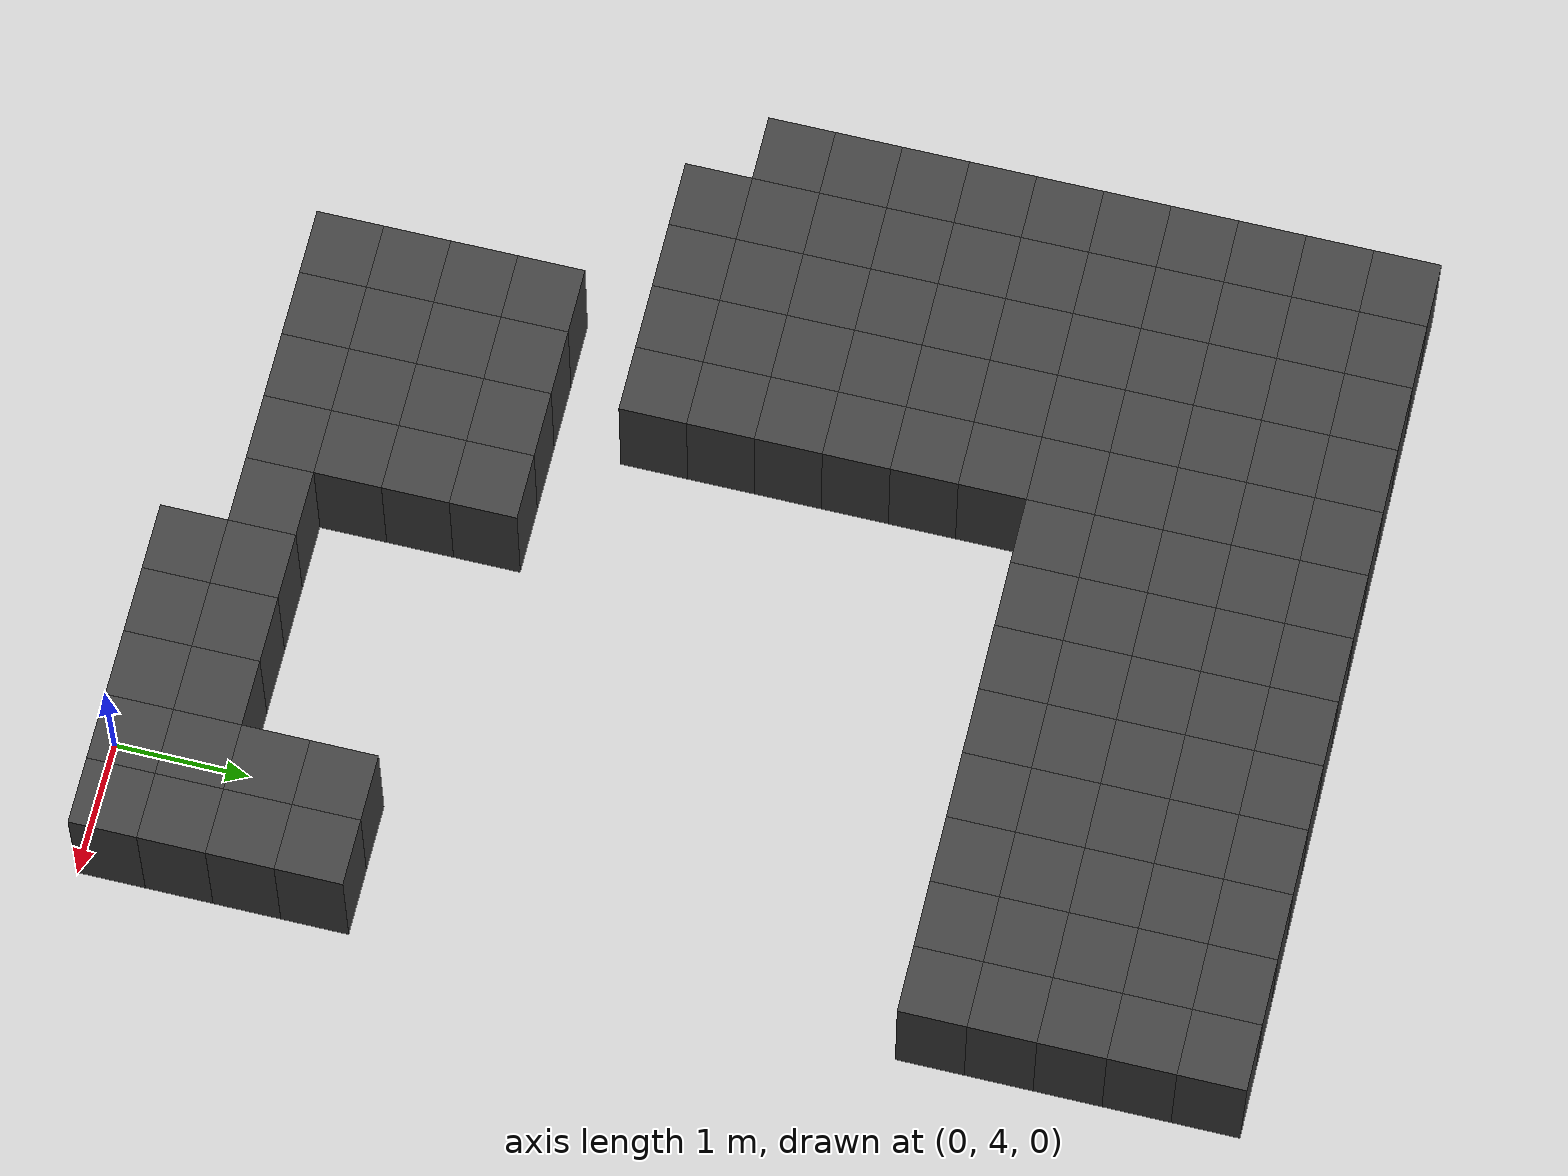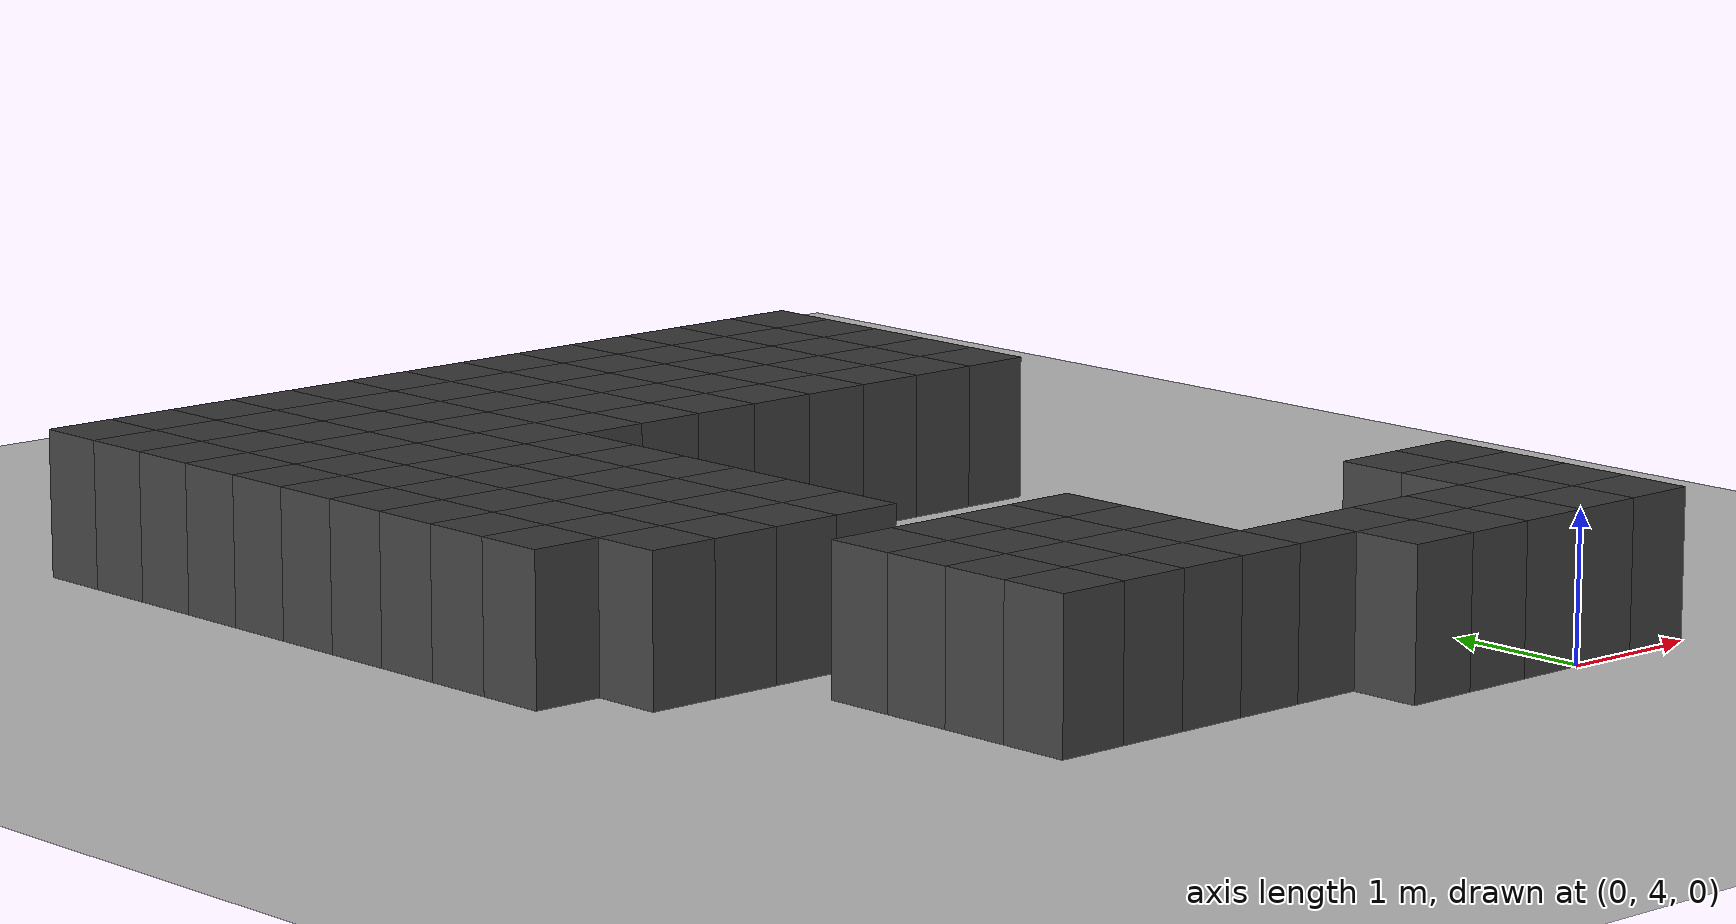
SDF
<sdf version="1.7">
 <world name="map_14668">
  <model name="ground_plane">
   <static>true</static>
   <link name="link">
    <collision name="collision">
     <geometry><plane><normal>0 0 1</normal><size>200 200</size></plane></geometry>
    </collision>
    <visual name="visual">
     <geometry><plane><normal>0 0 1</normal><size>200 200</size></plane></geometry>
     <material><ambient>0.8 0.8 0.8 1</ambient><diffuse>0.8 0.8 0.8 1</diffuse></material>
    </visual>
   </link>
  </model>
  <model name="maze_environment">
   <static>true</static>
   <link name="wall_14">
    <pose>-5.250 12.250 0.500 0 0 0</pose>
    <collision name="col"><geometry><box><size>0.5 0.5 1.0</size></box></geometry></collision>
    <visual name="vis">
     <geometry><box><size>0.5 0.5 1.0</size></box></geometry>
     <material><ambient>0.15 0.15 0.15 1</ambient><diffuse>0.25 0.25 0.25 1</diffuse></material>
    </visual>
   </link>
   <link name="wall_15">
    <pose>-4.750 12.250 0.500 0 0 0</pose>
    <collision name="col"><geometry><box><size>0.5 0.5 1.0</size></box></geometry></collision>
    <visual name="vis">
     <geometry><box><size>0.5 0.5 1.0</size></box></geometry>
     <material><ambient>0.15 0.15 0.15 1</ambient><diffuse>0.25 0.25 0.25 1</diffuse></material>
    </visual>
   </link>
   <link name="wall_16">
    <pose>-4.250 12.250 0.500 0 0 0</pose>
    <collision name="col"><geometry><box><size>0.5 0.5 1.0</size></box></geometry></collision>
    <visual name="vis">
     <geometry><box><size>0.5 0.5 1.0</size></box></geometry>
     <material><ambient>0.15 0.15 0.15 1</ambient><diffuse>0.25 0.25 0.25 1</diffuse></material>
    </visual>
   </link>
   <link name="wall_17">
    <pose>-3.750 12.250 0.500 0 0 0</pose>
    <collision name="col"><geometry><box><size>0.5 0.5 1.0</size></box></geometry></collision>
    <visual name="vis">
     <geometry><box><size>0.5 0.5 1.0</size></box></geometry>
     <material><ambient>0.15 0.15 0.15 1</ambient><diffuse>0.25 0.25 0.25 1</diffuse></material>
    </visual>
   </link>
   <link name="wall_18">
    <pose>-3.250 12.250 0.500 0 0 0</pose>
    <collision name="col"><geometry><box><size>0.5 0.5 1.0</size></box></geometry></collision>
    <visual name="vis">
     <geometry><box><size>0.5 0.5 1.0</size></box></geometry>
     <material><ambient>0.15 0.15 0.15 1</ambient><diffuse>0.25 0.25 0.25 1</diffuse></material>
    </visual>
   </link>
   <link name="wall_19">
    <pose>-2.750 12.250 0.500 0 0 0</pose>
    <collision name="col"><geometry><box><size>0.5 0.5 1.0</size></box></geometry></collision>
    <visual name="vis">
     <geometry><box><size>0.5 0.5 1.0</size></box></geometry>
     <material><ambient>0.15 0.15 0.15 1</ambient><diffuse>0.25 0.25 0.25 1</diffuse></material>
    </visual>
   </link>
   <link name="wall_20">
    <pose>-2.250 12.250 0.500 0 0 0</pose>
    <collision name="col"><geometry><box><size>0.5 0.5 1.0</size></box></geometry></collision>
    <visual name="vis">
     <geometry><box><size>0.5 0.5 1.0</size></box></geometry>
     <material><ambient>0.15 0.15 0.15 1</ambient><diffuse>0.25 0.25 0.25 1</diffuse></material>
    </visual>
   </link>
   <link name="wall_21">
    <pose>-1.750 12.250 0.500 0 0 0</pose>
    <collision name="col"><geometry><box><size>0.5 0.5 1.0</size></box></geometry></collision>
    <visual name="vis">
     <geometry><box><size>0.5 0.5 1.0</size></box></geometry>
     <material><ambient>0.15 0.15 0.15 1</ambient><diffuse>0.25 0.25 0.25 1</diffuse></material>
    </visual>
   </link>
   <link name="wall_22">
    <pose>-1.250 12.250 0.500 0 0 0</pose>
    <collision name="col"><geometry><box><size>0.5 0.5 1.0</size></box></geometry></collision>
    <visual name="vis">
     <geometry><box><size>0.5 0.5 1.0</size></box></geometry>
     <material><ambient>0.15 0.15 0.15 1</ambient><diffuse>0.25 0.25 0.25 1</diffuse></material>
    </visual>
   </link>
   <link name="wall_23">
    <pose>-0.750 12.250 0.500 0 0 0</pose>
    <collision name="col"><geometry><box><size>0.5 0.5 1.0</size></box></geometry></collision>
    <visual name="vis">
     <geometry><box><size>0.5 0.5 1.0</size></box></geometry>
     <material><ambient>0.15 0.15 0.15 1</ambient><diffuse>0.25 0.25 0.25 1</diffuse></material>
    </visual>
   </link>
   <link name="wall_24">
    <pose>-0.250 12.250 0.500 0 0 0</pose>
    <collision name="col"><geometry><box><size>0.5 0.5 1.0</size></box></geometry></collision>
    <visual name="vis">
     <geometry><box><size>0.5 0.5 1.0</size></box></geometry>
     <material><ambient>0.15 0.15 0.15 1</ambient><diffuse>0.25 0.25 0.25 1</diffuse></material>
    </visual>
   </link>
   <link name="wall_25">
    <pose>0.250 12.250 0.500 0 0 0</pose>
    <collision name="col"><geometry><box><size>0.5 0.5 1.0</size></box></geometry></collision>
    <visual name="vis">
     <geometry><box><size>0.5 0.5 1.0</size></box></geometry>
     <material><ambient>0.15 0.15 0.15 1</ambient><diffuse>0.25 0.25 0.25 1</diffuse></material>
    </visual>
   </link>
   <link name="wall_26">
    <pose>0.750 12.250 0.500 0 0 0</pose>
    <collision name="col"><geometry><box><size>0.5 0.5 1.0</size></box></geometry></collision>
    <visual name="vis">
     <geometry><box><size>0.5 0.5 1.0</size></box></geometry>
     <material><ambient>0.15 0.15 0.15 1</ambient><diffuse>0.25 0.25 0.25 1</diffuse></material>
    </visual>
   </link>
   <link name="wall_61">
    <pose>-5.250 11.750 0.500 0 0 0</pose>
    <collision name="col"><geometry><box><size>0.5 0.5 1.0</size></box></geometry></collision>
    <visual name="vis">
     <geometry><box><size>0.5 0.5 1.0</size></box></geometry>
     <material><ambient>0.15 0.15 0.15 1</ambient><diffuse>0.25 0.25 0.25 1</diffuse></material>
    </visual>
   </link>
   <link name="wall_62">
    <pose>-4.750 11.750 0.500 0 0 0</pose>
    <collision name="col"><geometry><box><size>0.5 0.5 1.0</size></box></geometry></collision>
    <visual name="vis">
     <geometry><box><size>0.5 0.5 1.0</size></box></geometry>
     <material><ambient>0.15 0.15 0.15 1</ambient><diffuse>0.25 0.25 0.25 1</diffuse></material>
    </visual>
   </link>
   <link name="wall_63">
    <pose>-4.250 11.750 0.500 0 0 0</pose>
    <collision name="col"><geometry><box><size>0.5 0.5 1.0</size></box></geometry></collision>
    <visual name="vis">
     <geometry><box><size>0.5 0.5 1.0</size></box></geometry>
     <material><ambient>0.15 0.15 0.15 1</ambient><diffuse>0.25 0.25 0.25 1</diffuse></material>
    </visual>
   </link>
   <link name="wall_64">
    <pose>-3.750 11.750 0.500 0 0 0</pose>
    <collision name="col"><geometry><box><size>0.5 0.5 1.0</size></box></geometry></collision>
    <visual name="vis">
     <geometry><box><size>0.5 0.5 1.0</size></box></geometry>
     <material><ambient>0.15 0.15 0.15 1</ambient><diffuse>0.25 0.25 0.25 1</diffuse></material>
    </visual>
   </link>
   <link name="wall_65">
    <pose>-3.250 11.750 0.500 0 0 0</pose>
    <collision name="col"><geometry><box><size>0.5 0.5 1.0</size></box></geometry></collision>
    <visual name="vis">
     <geometry><box><size>0.5 0.5 1.0</size></box></geometry>
     <material><ambient>0.15 0.15 0.15 1</ambient><diffuse>0.25 0.25 0.25 1</diffuse></material>
    </visual>
   </link>
   <link name="wall_66">
    <pose>-2.750 11.750 0.500 0 0 0</pose>
    <collision name="col"><geometry><box><size>0.5 0.5 1.0</size></box></geometry></collision>
    <visual name="vis">
     <geometry><box><size>0.5 0.5 1.0</size></box></geometry>
     <material><ambient>0.15 0.15 0.15 1</ambient><diffuse>0.25 0.25 0.25 1</diffuse></material>
    </visual>
   </link>
   <link name="wall_67">
    <pose>-2.250 11.750 0.500 0 0 0</pose>
    <collision name="col"><geometry><box><size>0.5 0.5 1.0</size></box></geometry></collision>
    <visual name="vis">
     <geometry><box><size>0.5 0.5 1.0</size></box></geometry>
     <material><ambient>0.15 0.15 0.15 1</ambient><diffuse>0.25 0.25 0.25 1</diffuse></material>
    </visual>
   </link>
   <link name="wall_68">
    <pose>-1.750 11.750 0.500 0 0 0</pose>
    <collision name="col"><geometry><box><size>0.5 0.5 1.0</size></box></geometry></collision>
    <visual name="vis">
     <geometry><box><size>0.5 0.5 1.0</size></box></geometry>
     <material><ambient>0.15 0.15 0.15 1</ambient><diffuse>0.25 0.25 0.25 1</diffuse></material>
    </visual>
   </link>
   <link name="wall_69">
    <pose>-1.250 11.750 0.500 0 0 0</pose>
    <collision name="col"><geometry><box><size>0.5 0.5 1.0</size></box></geometry></collision>
    <visual name="vis">
     <geometry><box><size>0.5 0.5 1.0</size></box></geometry>
     <material><ambient>0.15 0.15 0.15 1</ambient><diffuse>0.25 0.25 0.25 1</diffuse></material>
    </visual>
   </link>
   <link name="wall_70">
    <pose>-0.750 11.750 0.500 0 0 0</pose>
    <collision name="col"><geometry><box><size>0.5 0.5 1.0</size></box></geometry></collision>
    <visual name="vis">
     <geometry><box><size>0.5 0.5 1.0</size></box></geometry>
     <material><ambient>0.15 0.15 0.15 1</ambient><diffuse>0.25 0.25 0.25 1</diffuse></material>
    </visual>
   </link>
   <link name="wall_71">
    <pose>-0.250 11.750 0.500 0 0 0</pose>
    <collision name="col"><geometry><box><size>0.5 0.5 1.0</size></box></geometry></collision>
    <visual name="vis">
     <geometry><box><size>0.5 0.5 1.0</size></box></geometry>
     <material><ambient>0.15 0.15 0.15 1</ambient><diffuse>0.25 0.25 0.25 1</diffuse></material>
    </visual>
   </link>
   <link name="wall_72">
    <pose>0.250 11.750 0.500 0 0 0</pose>
    <collision name="col"><geometry><box><size>0.5 0.5 1.0</size></box></geometry></collision>
    <visual name="vis">
     <geometry><box><size>0.5 0.5 1.0</size></box></geometry>
     <material><ambient>0.15 0.15 0.15 1</ambient><diffuse>0.25 0.25 0.25 1</diffuse></material>
    </visual>
   </link>
   <link name="wall_73">
    <pose>0.750 11.750 0.500 0 0 0</pose>
    <collision name="col"><geometry><box><size>0.5 0.5 1.0</size></box></geometry></collision>
    <visual name="vis">
     <geometry><box><size>0.5 0.5 1.0</size></box></geometry>
     <material><ambient>0.15 0.15 0.15 1</ambient><diffuse>0.25 0.25 0.25 1</diffuse></material>
    </visual>
   </link>
   <link name="wall_108">
    <pose>-5.250 11.250 0.500 0 0 0</pose>
    <collision name="col"><geometry><box><size>0.5 0.5 1.0</size></box></geometry></collision>
    <visual name="vis">
     <geometry><box><size>0.5 0.5 1.0</size></box></geometry>
     <material><ambient>0.15 0.15 0.15 1</ambient><diffuse>0.25 0.25 0.25 1</diffuse></material>
    </visual>
   </link>
   <link name="wall_109">
    <pose>-4.750 11.250 0.500 0 0 0</pose>
    <collision name="col"><geometry><box><size>0.5 0.5 1.0</size></box></geometry></collision>
    <visual name="vis">
     <geometry><box><size>0.5 0.5 1.0</size></box></geometry>
     <material><ambient>0.15 0.15 0.15 1</ambient><diffuse>0.25 0.25 0.25 1</diffuse></material>
    </visual>
   </link>
   <link name="wall_110">
    <pose>-4.250 11.250 0.500 0 0 0</pose>
    <collision name="col"><geometry><box><size>0.5 0.5 1.0</size></box></geometry></collision>
    <visual name="vis">
     <geometry><box><size>0.5 0.5 1.0</size></box></geometry>
     <material><ambient>0.15 0.15 0.15 1</ambient><diffuse>0.25 0.25 0.25 1</diffuse></material>
    </visual>
   </link>
   <link name="wall_111">
    <pose>-3.750 11.250 0.500 0 0 0</pose>
    <collision name="col"><geometry><box><size>0.5 0.5 1.0</size></box></geometry></collision>
    <visual name="vis">
     <geometry><box><size>0.5 0.5 1.0</size></box></geometry>
     <material><ambient>0.15 0.15 0.15 1</ambient><diffuse>0.25 0.25 0.25 1</diffuse></material>
    </visual>
   </link>
   <link name="wall_112">
    <pose>-3.250 11.250 0.500 0 0 0</pose>
    <collision name="col"><geometry><box><size>0.5 0.5 1.0</size></box></geometry></collision>
    <visual name="vis">
     <geometry><box><size>0.5 0.5 1.0</size></box></geometry>
     <material><ambient>0.15 0.15 0.15 1</ambient><diffuse>0.25 0.25 0.25 1</diffuse></material>
    </visual>
   </link>
   <link name="wall_113">
    <pose>-2.750 11.250 0.500 0 0 0</pose>
    <collision name="col"><geometry><box><size>0.5 0.5 1.0</size></box></geometry></collision>
    <visual name="vis">
     <geometry><box><size>0.5 0.5 1.0</size></box></geometry>
     <material><ambient>0.15 0.15 0.15 1</ambient><diffuse>0.25 0.25 0.25 1</diffuse></material>
    </visual>
   </link>
   <link name="wall_114">
    <pose>-2.250 11.250 0.500 0 0 0</pose>
    <collision name="col"><geometry><box><size>0.5 0.5 1.0</size></box></geometry></collision>
    <visual name="vis">
     <geometry><box><size>0.5 0.5 1.0</size></box></geometry>
     <material><ambient>0.15 0.15 0.15 1</ambient><diffuse>0.25 0.25 0.25 1</diffuse></material>
    </visual>
   </link>
   <link name="wall_115">
    <pose>-1.750 11.250 0.500 0 0 0</pose>
    <collision name="col"><geometry><box><size>0.5 0.5 1.0</size></box></geometry></collision>
    <visual name="vis">
     <geometry><box><size>0.5 0.5 1.0</size></box></geometry>
     <material><ambient>0.15 0.15 0.15 1</ambient><diffuse>0.25 0.25 0.25 1</diffuse></material>
    </visual>
   </link>
   <link name="wall_116">
    <pose>-1.250 11.250 0.500 0 0 0</pose>
    <collision name="col"><geometry><box><size>0.5 0.5 1.0</size></box></geometry></collision>
    <visual name="vis">
     <geometry><box><size>0.5 0.5 1.0</size></box></geometry>
     <material><ambient>0.15 0.15 0.15 1</ambient><diffuse>0.25 0.25 0.25 1</diffuse></material>
    </visual>
   </link>
   <link name="wall_117">
    <pose>-0.750 11.250 0.500 0 0 0</pose>
    <collision name="col"><geometry><box><size>0.5 0.5 1.0</size></box></geometry></collision>
    <visual name="vis">
     <geometry><box><size>0.5 0.5 1.0</size></box></geometry>
     <material><ambient>0.15 0.15 0.15 1</ambient><diffuse>0.25 0.25 0.25 1</diffuse></material>
    </visual>
   </link>
   <link name="wall_118">
    <pose>-0.250 11.250 0.500 0 0 0</pose>
    <collision name="col"><geometry><box><size>0.5 0.5 1.0</size></box></geometry></collision>
    <visual name="vis">
     <geometry><box><size>0.5 0.5 1.0</size></box></geometry>
     <material><ambient>0.15 0.15 0.15 1</ambient><diffuse>0.25 0.25 0.25 1</diffuse></material>
    </visual>
   </link>
   <link name="wall_119">
    <pose>0.250 11.250 0.500 0 0 0</pose>
    <collision name="col"><geometry><box><size>0.5 0.5 1.0</size></box></geometry></collision>
    <visual name="vis">
     <geometry><box><size>0.5 0.5 1.0</size></box></geometry>
     <material><ambient>0.15 0.15 0.15 1</ambient><diffuse>0.25 0.25 0.25 1</diffuse></material>
    </visual>
   </link>
   <link name="wall_120">
    <pose>0.750 11.250 0.500 0 0 0</pose>
    <collision name="col"><geometry><box><size>0.5 0.5 1.0</size></box></geometry></collision>
    <visual name="vis">
     <geometry><box><size>0.5 0.5 1.0</size></box></geometry>
     <material><ambient>0.15 0.15 0.15 1</ambient><diffuse>0.25 0.25 0.25 1</diffuse></material>
    </visual>
   </link>
   <link name="wall_147">
    <pose>-5.250 10.750 0.500 0 0 0</pose>
    <collision name="col"><geometry><box><size>0.5 0.5 1.0</size></box></geometry></collision>
    <visual name="vis">
     <geometry><box><size>0.5 0.5 1.0</size></box></geometry>
     <material><ambient>0.15 0.15 0.15 1</ambient><diffuse>0.25 0.25 0.25 1</diffuse></material>
    </visual>
   </link>
   <link name="wall_148">
    <pose>-4.750 10.750 0.500 0 0 0</pose>
    <collision name="col"><geometry><box><size>0.5 0.5 1.0</size></box></geometry></collision>
    <visual name="vis">
     <geometry><box><size>0.5 0.5 1.0</size></box></geometry>
     <material><ambient>0.15 0.15 0.15 1</ambient><diffuse>0.25 0.25 0.25 1</diffuse></material>
    </visual>
   </link>
   <link name="wall_149">
    <pose>-4.250 10.750 0.500 0 0 0</pose>
    <collision name="col"><geometry><box><size>0.5 0.5 1.0</size></box></geometry></collision>
    <visual name="vis">
     <geometry><box><size>0.5 0.5 1.0</size></box></geometry>
     <material><ambient>0.15 0.15 0.15 1</ambient><diffuse>0.25 0.25 0.25 1</diffuse></material>
    </visual>
   </link>
   <link name="wall_150">
    <pose>-3.750 10.750 0.500 0 0 0</pose>
    <collision name="col"><geometry><box><size>0.5 0.5 1.0</size></box></geometry></collision>
    <visual name="vis">
     <geometry><box><size>0.5 0.5 1.0</size></box></geometry>
     <material><ambient>0.15 0.15 0.15 1</ambient><diffuse>0.25 0.25 0.25 1</diffuse></material>
    </visual>
   </link>
   <link name="wall_151">
    <pose>-3.250 10.750 0.500 0 0 0</pose>
    <collision name="col"><geometry><box><size>0.5 0.5 1.0</size></box></geometry></collision>
    <visual name="vis">
     <geometry><box><size>0.5 0.5 1.0</size></box></geometry>
     <material><ambient>0.15 0.15 0.15 1</ambient><diffuse>0.25 0.25 0.25 1</diffuse></material>
    </visual>
   </link>
   <link name="wall_152">
    <pose>-2.750 10.750 0.500 0 0 0</pose>
    <collision name="col"><geometry><box><size>0.5 0.5 1.0</size></box></geometry></collision>
    <visual name="vis">
     <geometry><box><size>0.5 0.5 1.0</size></box></geometry>
     <material><ambient>0.15 0.15 0.15 1</ambient><diffuse>0.25 0.25 0.25 1</diffuse></material>
    </visual>
   </link>
   <link name="wall_153">
    <pose>-2.250 10.750 0.500 0 0 0</pose>
    <collision name="col"><geometry><box><size>0.5 0.5 1.0</size></box></geometry></collision>
    <visual name="vis">
     <geometry><box><size>0.5 0.5 1.0</size></box></geometry>
     <material><ambient>0.15 0.15 0.15 1</ambient><diffuse>0.25 0.25 0.25 1</diffuse></material>
    </visual>
   </link>
   <link name="wall_154">
    <pose>-1.750 10.750 0.500 0 0 0</pose>
    <collision name="col"><geometry><box><size>0.5 0.5 1.0</size></box></geometry></collision>
    <visual name="vis">
     <geometry><box><size>0.5 0.5 1.0</size></box></geometry>
     <material><ambient>0.15 0.15 0.15 1</ambient><diffuse>0.25 0.25 0.25 1</diffuse></material>
    </visual>
   </link>
   <link name="wall_155">
    <pose>-1.250 10.750 0.500 0 0 0</pose>
    <collision name="col"><geometry><box><size>0.5 0.5 1.0</size></box></geometry></collision>
    <visual name="vis">
     <geometry><box><size>0.5 0.5 1.0</size></box></geometry>
     <material><ambient>0.15 0.15 0.15 1</ambient><diffuse>0.25 0.25 0.25 1</diffuse></material>
    </visual>
   </link>
   <link name="wall_156">
    <pose>-0.750 10.750 0.500 0 0 0</pose>
    <collision name="col"><geometry><box><size>0.5 0.5 1.0</size></box></geometry></collision>
    <visual name="vis">
     <geometry><box><size>0.5 0.5 1.0</size></box></geometry>
     <material><ambient>0.15 0.15 0.15 1</ambient><diffuse>0.25 0.25 0.25 1</diffuse></material>
    </visual>
   </link>
   <link name="wall_157">
    <pose>-0.250 10.750 0.500 0 0 0</pose>
    <collision name="col"><geometry><box><size>0.5 0.5 1.0</size></box></geometry></collision>
    <visual name="vis">
     <geometry><box><size>0.5 0.5 1.0</size></box></geometry>
     <material><ambient>0.15 0.15 0.15 1</ambient><diffuse>0.25 0.25 0.25 1</diffuse></material>
    </visual>
   </link>
   <link name="wall_158">
    <pose>0.250 10.750 0.500 0 0 0</pose>
    <collision name="col"><geometry><box><size>0.5 0.5 1.0</size></box></geometry></collision>
    <visual name="vis">
     <geometry><box><size>0.5 0.5 1.0</size></box></geometry>
     <material><ambient>0.15 0.15 0.15 1</ambient><diffuse>0.25 0.25 0.25 1</diffuse></material>
    </visual>
   </link>
   <link name="wall_159">
    <pose>0.750 10.750 0.500 0 0 0</pose>
    <collision name="col"><geometry><box><size>0.5 0.5 1.0</size></box></geometry></collision>
    <visual name="vis">
     <geometry><box><size>0.5 0.5 1.0</size></box></geometry>
     <material><ambient>0.15 0.15 0.15 1</ambient><diffuse>0.25 0.25 0.25 1</diffuse></material>
    </visual>
   </link>
   <link name="wall_188">
    <pose>-5.250 10.250 0.500 0 0 0</pose>
    <collision name="col"><geometry><box><size>0.5 0.5 1.0</size></box></geometry></collision>
    <visual name="vis">
     <geometry><box><size>0.5 0.5 1.0</size></box></geometry>
     <material><ambient>0.15 0.15 0.15 1</ambient><diffuse>0.25 0.25 0.25 1</diffuse></material>
    </visual>
   </link>
   <link name="wall_189">
    <pose>-4.750 10.250 0.500 0 0 0</pose>
    <collision name="col"><geometry><box><size>0.5 0.5 1.0</size></box></geometry></collision>
    <visual name="vis">
     <geometry><box><size>0.5 0.5 1.0</size></box></geometry>
     <material><ambient>0.15 0.15 0.15 1</ambient><diffuse>0.25 0.25 0.25 1</diffuse></material>
    </visual>
   </link>
   <link name="wall_190">
    <pose>-4.250 10.250 0.500 0 0 0</pose>
    <collision name="col"><geometry><box><size>0.5 0.5 1.0</size></box></geometry></collision>
    <visual name="vis">
     <geometry><box><size>0.5 0.5 1.0</size></box></geometry>
     <material><ambient>0.15 0.15 0.15 1</ambient><diffuse>0.25 0.25 0.25 1</diffuse></material>
    </visual>
   </link>
   <link name="wall_191">
    <pose>-3.750 10.250 0.500 0 0 0</pose>
    <collision name="col"><geometry><box><size>0.5 0.5 1.0</size></box></geometry></collision>
    <visual name="vis">
     <geometry><box><size>0.5 0.5 1.0</size></box></geometry>
     <material><ambient>0.15 0.15 0.15 1</ambient><diffuse>0.25 0.25 0.25 1</diffuse></material>
    </visual>
   </link>
   <link name="wall_192">
    <pose>-3.250 10.250 0.500 0 0 0</pose>
    <collision name="col"><geometry><box><size>0.5 0.5 1.0</size></box></geometry></collision>
    <visual name="vis">
     <geometry><box><size>0.5 0.5 1.0</size></box></geometry>
     <material><ambient>0.15 0.15 0.15 1</ambient><diffuse>0.25 0.25 0.25 1</diffuse></material>
    </visual>
   </link>
   <link name="wall_193">
    <pose>-2.750 10.250 0.500 0 0 0</pose>
    <collision name="col"><geometry><box><size>0.5 0.5 1.0</size></box></geometry></collision>
    <visual name="vis">
     <geometry><box><size>0.5 0.5 1.0</size></box></geometry>
     <material><ambient>0.15 0.15 0.15 1</ambient><diffuse>0.25 0.25 0.25 1</diffuse></material>
    </visual>
   </link>
   <link name="wall_194">
    <pose>-2.250 10.250 0.500 0 0 0</pose>
    <collision name="col"><geometry><box><size>0.5 0.5 1.0</size></box></geometry></collision>
    <visual name="vis">
     <geometry><box><size>0.5 0.5 1.0</size></box></geometry>
     <material><ambient>0.15 0.15 0.15 1</ambient><diffuse>0.25 0.25 0.25 1</diffuse></material>
    </visual>
   </link>
   <link name="wall_195">
    <pose>-1.750 10.250 0.500 0 0 0</pose>
    <collision name="col"><geometry><box><size>0.5 0.5 1.0</size></box></geometry></collision>
    <visual name="vis">
     <geometry><box><size>0.5 0.5 1.0</size></box></geometry>
     <material><ambient>0.15 0.15 0.15 1</ambient><diffuse>0.25 0.25 0.25 1</diffuse></material>
    </visual>
   </link>
   <link name="wall_196">
    <pose>-1.250 10.250 0.500 0 0 0</pose>
    <collision name="col"><geometry><box><size>0.5 0.5 1.0</size></box></geometry></collision>
    <visual name="vis">
     <geometry><box><size>0.5 0.5 1.0</size></box></geometry>
     <material><ambient>0.15 0.15 0.15 1</ambient><diffuse>0.25 0.25 0.25 1</diffuse></material>
    </visual>
   </link>
   <link name="wall_197">
    <pose>-0.750 10.250 0.500 0 0 0</pose>
    <collision name="col"><geometry><box><size>0.5 0.5 1.0</size></box></geometry></collision>
    <visual name="vis">
     <geometry><box><size>0.5 0.5 1.0</size></box></geometry>
     <material><ambient>0.15 0.15 0.15 1</ambient><diffuse>0.25 0.25 0.25 1</diffuse></material>
    </visual>
   </link>
   <link name="wall_198">
    <pose>-0.250 10.250 0.500 0 0 0</pose>
    <collision name="col"><geometry><box><size>0.5 0.5 1.0</size></box></geometry></collision>
    <visual name="vis">
     <geometry><box><size>0.5 0.5 1.0</size></box></geometry>
     <material><ambient>0.15 0.15 0.15 1</ambient><diffuse>0.25 0.25 0.25 1</diffuse></material>
    </visual>
   </link>
   <link name="wall_199">
    <pose>0.250 10.250 0.500 0 0 0</pose>
    <collision name="col"><geometry><box><size>0.5 0.5 1.0</size></box></geometry></collision>
    <visual name="vis">
     <geometry><box><size>0.5 0.5 1.0</size></box></geometry>
     <material><ambient>0.15 0.15 0.15 1</ambient><diffuse>0.25 0.25 0.25 1</diffuse></material>
    </visual>
   </link>
   <link name="wall_200">
    <pose>0.750 10.250 0.500 0 0 0</pose>
    <collision name="col"><geometry><box><size>0.5 0.5 1.0</size></box></geometry></collision>
    <visual name="vis">
     <geometry><box><size>0.5 0.5 1.0</size></box></geometry>
     <material><ambient>0.15 0.15 0.15 1</ambient><diffuse>0.25 0.25 0.25 1</diffuse></material>
    </visual>
   </link>
   <link name="wall_227">
    <pose>-5.250 9.750 0.500 0 0 0</pose>
    <collision name="col"><geometry><box><size>0.5 0.5 1.0</size></box></geometry></collision>
    <visual name="vis">
     <geometry><box><size>0.5 0.5 1.0</size></box></geometry>
     <material><ambient>0.15 0.15 0.15 1</ambient><diffuse>0.25 0.25 0.25 1</diffuse></material>
    </visual>
   </link>
   <link name="wall_228">
    <pose>-4.750 9.750 0.500 0 0 0</pose>
    <collision name="col"><geometry><box><size>0.5 0.5 1.0</size></box></geometry></collision>
    <visual name="vis">
     <geometry><box><size>0.5 0.5 1.0</size></box></geometry>
     <material><ambient>0.15 0.15 0.15 1</ambient><diffuse>0.25 0.25 0.25 1</diffuse></material>
    </visual>
   </link>
   <link name="wall_229">
    <pose>-4.250 9.750 0.500 0 0 0</pose>
    <collision name="col"><geometry><box><size>0.5 0.5 1.0</size></box></geometry></collision>
    <visual name="vis">
     <geometry><box><size>0.5 0.5 1.0</size></box></geometry>
     <material><ambient>0.15 0.15 0.15 1</ambient><diffuse>0.25 0.25 0.25 1</diffuse></material>
    </visual>
   </link>
   <link name="wall_230">
    <pose>-3.750 9.750 0.500 0 0 0</pose>
    <collision name="col"><geometry><box><size>0.5 0.5 1.0</size></box></geometry></collision>
    <visual name="vis">
     <geometry><box><size>0.5 0.5 1.0</size></box></geometry>
     <material><ambient>0.15 0.15 0.15 1</ambient><diffuse>0.25 0.25 0.25 1</diffuse></material>
    </visual>
   </link>
   <link name="wall_231">
    <pose>-3.250 9.750 0.500 0 0 0</pose>
    <collision name="col"><geometry><box><size>0.5 0.5 1.0</size></box></geometry></collision>
    <visual name="vis">
     <geometry><box><size>0.5 0.5 1.0</size></box></geometry>
     <material><ambient>0.15 0.15 0.15 1</ambient><diffuse>0.25 0.25 0.25 1</diffuse></material>
    </visual>
   </link>
   <link name="wall_257">
    <pose>-5.250 9.250 0.500 0 0 0</pose>
    <collision name="col"><geometry><box><size>0.5 0.5 1.0</size></box></geometry></collision>
    <visual name="vis">
     <geometry><box><size>0.5 0.5 1.0</size></box></geometry>
     <material><ambient>0.15 0.15 0.15 1</ambient><diffuse>0.25 0.25 0.25 1</diffuse></material>
    </visual>
   </link>
   <link name="wall_258">
    <pose>-4.750 9.250 0.500 0 0 0</pose>
    <collision name="col"><geometry><box><size>0.5 0.5 1.0</size></box></geometry></collision>
    <visual name="vis">
     <geometry><box><size>0.5 0.5 1.0</size></box></geometry>
     <material><ambient>0.15 0.15 0.15 1</ambient><diffuse>0.25 0.25 0.25 1</diffuse></material>
    </visual>
   </link>
   <link name="wall_259">
    <pose>-4.250 9.250 0.500 0 0 0</pose>
    <collision name="col"><geometry><box><size>0.5 0.5 1.0</size></box></geometry></collision>
    <visual name="vis">
     <geometry><box><size>0.5 0.5 1.0</size></box></geometry>
     <material><ambient>0.15 0.15 0.15 1</ambient><diffuse>0.25 0.25 0.25 1</diffuse></material>
    </visual>
   </link>
   <link name="wall_260">
    <pose>-3.750 9.250 0.500 0 0 0</pose>
    <collision name="col"><geometry><box><size>0.5 0.5 1.0</size></box></geometry></collision>
    <visual name="vis">
     <geometry><box><size>0.5 0.5 1.0</size></box></geometry>
     <material><ambient>0.15 0.15 0.15 1</ambient><diffuse>0.25 0.25 0.25 1</diffuse></material>
    </visual>
   </link>
   <link name="wall_261">
    <pose>-3.250 9.250 0.500 0 0 0</pose>
    <collision name="col"><geometry><box><size>0.5 0.5 1.0</size></box></geometry></collision>
    <visual name="vis">
     <geometry><box><size>0.5 0.5 1.0</size></box></geometry>
     <material><ambient>0.15 0.15 0.15 1</ambient><diffuse>0.25 0.25 0.25 1</diffuse></material>
    </visual>
   </link>
   <link name="wall_294">
    <pose>-5.250 8.750 0.500 0 0 0</pose>
    <collision name="col"><geometry><box><size>0.5 0.5 1.0</size></box></geometry></collision>
    <visual name="vis">
     <geometry><box><size>0.5 0.5 1.0</size></box></geometry>
     <material><ambient>0.15 0.15 0.15 1</ambient><diffuse>0.25 0.25 0.25 1</diffuse></material>
    </visual>
   </link>
   <link name="wall_295">
    <pose>-4.750 8.750 0.500 0 0 0</pose>
    <collision name="col"><geometry><box><size>0.5 0.5 1.0</size></box></geometry></collision>
    <visual name="vis">
     <geometry><box><size>0.5 0.5 1.0</size></box></geometry>
     <material><ambient>0.15 0.15 0.15 1</ambient><diffuse>0.25 0.25 0.25 1</diffuse></material>
    </visual>
   </link>
   <link name="wall_296">
    <pose>-4.250 8.750 0.500 0 0 0</pose>
    <collision name="col"><geometry><box><size>0.5 0.5 1.0</size></box></geometry></collision>
    <visual name="vis">
     <geometry><box><size>0.5 0.5 1.0</size></box></geometry>
     <material><ambient>0.15 0.15 0.15 1</ambient><diffuse>0.25 0.25 0.25 1</diffuse></material>
    </visual>
   </link>
   <link name="wall_297">
    <pose>-3.750 8.750 0.500 0 0 0</pose>
    <collision name="col"><geometry><box><size>0.5 0.5 1.0</size></box></geometry></collision>
    <visual name="vis">
     <geometry><box><size>0.5 0.5 1.0</size></box></geometry>
     <material><ambient>0.15 0.15 0.15 1</ambient><diffuse>0.25 0.25 0.25 1</diffuse></material>
    </visual>
   </link>
   <link name="wall_298">
    <pose>-3.250 8.750 0.500 0 0 0</pose>
    <collision name="col"><geometry><box><size>0.5 0.5 1.0</size></box></geometry></collision>
    <visual name="vis">
     <geometry><box><size>0.5 0.5 1.0</size></box></geometry>
     <material><ambient>0.15 0.15 0.15 1</ambient><diffuse>0.25 0.25 0.25 1</diffuse></material>
    </visual>
   </link>
   <link name="wall_331">
    <pose>-5.250 8.250 0.500 0 0 0</pose>
    <collision name="col"><geometry><box><size>0.5 0.5 1.0</size></box></geometry></collision>
    <visual name="vis">
     <geometry><box><size>0.5 0.5 1.0</size></box></geometry>
     <material><ambient>0.15 0.15 0.15 1</ambient><diffuse>0.25 0.25 0.25 1</diffuse></material>
    </visual>
   </link>
   <link name="wall_332">
    <pose>-4.750 8.250 0.500 0 0 0</pose>
    <collision name="col"><geometry><box><size>0.5 0.5 1.0</size></box></geometry></collision>
    <visual name="vis">
     <geometry><box><size>0.5 0.5 1.0</size></box></geometry>
     <material><ambient>0.15 0.15 0.15 1</ambient><diffuse>0.25 0.25 0.25 1</diffuse></material>
    </visual>
   </link>
   <link name="wall_333">
    <pose>-4.250 8.250 0.500 0 0 0</pose>
    <collision name="col"><geometry><box><size>0.5 0.5 1.0</size></box></geometry></collision>
    <visual name="vis">
     <geometry><box><size>0.5 0.5 1.0</size></box></geometry>
     <material><ambient>0.15 0.15 0.15 1</ambient><diffuse>0.25 0.25 0.25 1</diffuse></material>
    </visual>
   </link>
   <link name="wall_334">
    <pose>-3.750 8.250 0.500 0 0 0</pose>
    <collision name="col"><geometry><box><size>0.5 0.5 1.0</size></box></geometry></collision>
    <visual name="vis">
     <geometry><box><size>0.5 0.5 1.0</size></box></geometry>
     <material><ambient>0.15 0.15 0.15 1</ambient><diffuse>0.25 0.25 0.25 1</diffuse></material>
    </visual>
   </link>
   <link name="wall_335">
    <pose>-3.250 8.250 0.500 0 0 0</pose>
    <collision name="col"><geometry><box><size>0.5 0.5 1.0</size></box></geometry></collision>
    <visual name="vis">
     <geometry><box><size>0.5 0.5 1.0</size></box></geometry>
     <material><ambient>0.15 0.15 0.15 1</ambient><diffuse>0.25 0.25 0.25 1</diffuse></material>
    </visual>
   </link>
   <link name="wall_365">
    <pose>-5.250 7.750 0.500 0 0 0</pose>
    <collision name="col"><geometry><box><size>0.5 0.5 1.0</size></box></geometry></collision>
    <visual name="vis">
     <geometry><box><size>0.5 0.5 1.0</size></box></geometry>
     <material><ambient>0.15 0.15 0.15 1</ambient><diffuse>0.25 0.25 0.25 1</diffuse></material>
    </visual>
   </link>
   <link name="wall_366">
    <pose>-4.750 7.750 0.500 0 0 0</pose>
    <collision name="col"><geometry><box><size>0.5 0.5 1.0</size></box></geometry></collision>
    <visual name="vis">
     <geometry><box><size>0.5 0.5 1.0</size></box></geometry>
     <material><ambient>0.15 0.15 0.15 1</ambient><diffuse>0.25 0.25 0.25 1</diffuse></material>
    </visual>
   </link>
   <link name="wall_367">
    <pose>-4.250 7.750 0.500 0 0 0</pose>
    <collision name="col"><geometry><box><size>0.5 0.5 1.0</size></box></geometry></collision>
    <visual name="vis">
     <geometry><box><size>0.5 0.5 1.0</size></box></geometry>
     <material><ambient>0.15 0.15 0.15 1</ambient><diffuse>0.25 0.25 0.25 1</diffuse></material>
    </visual>
   </link>
   <link name="wall_368">
    <pose>-3.750 7.750 0.500 0 0 0</pose>
    <collision name="col"><geometry><box><size>0.5 0.5 1.0</size></box></geometry></collision>
    <visual name="vis">
     <geometry><box><size>0.5 0.5 1.0</size></box></geometry>
     <material><ambient>0.15 0.15 0.15 1</ambient><diffuse>0.25 0.25 0.25 1</diffuse></material>
    </visual>
   </link>
   <link name="wall_369">
    <pose>-3.250 7.750 0.500 0 0 0</pose>
    <collision name="col"><geometry><box><size>0.5 0.5 1.0</size></box></geometry></collision>
    <visual name="vis">
     <geometry><box><size>0.5 0.5 1.0</size></box></geometry>
     <material><ambient>0.15 0.15 0.15 1</ambient><diffuse>0.25 0.25 0.25 1</diffuse></material>
    </visual>
   </link>
   <link name="wall_401">
    <pose>-4.750 7.250 0.500 0 0 0</pose>
    <collision name="col"><geometry><box><size>0.5 0.5 1.0</size></box></geometry></collision>
    <visual name="vis">
     <geometry><box><size>0.5 0.5 1.0</size></box></geometry>
     <material><ambient>0.15 0.15 0.15 1</ambient><diffuse>0.25 0.25 0.25 1</diffuse></material>
    </visual>
   </link>
   <link name="wall_402">
    <pose>-4.250 7.250 0.500 0 0 0</pose>
    <collision name="col"><geometry><box><size>0.5 0.5 1.0</size></box></geometry></collision>
    <visual name="vis">
     <geometry><box><size>0.5 0.5 1.0</size></box></geometry>
     <material><ambient>0.15 0.15 0.15 1</ambient><diffuse>0.25 0.25 0.25 1</diffuse></material>
    </visual>
   </link>
   <link name="wall_403">
    <pose>-3.750 7.250 0.500 0 0 0</pose>
    <collision name="col"><geometry><box><size>0.5 0.5 1.0</size></box></geometry></collision>
    <visual name="vis">
     <geometry><box><size>0.5 0.5 1.0</size></box></geometry>
     <material><ambient>0.15 0.15 0.15 1</ambient><diffuse>0.25 0.25 0.25 1</diffuse></material>
    </visual>
   </link>
   <link name="wall_404">
    <pose>-3.250 7.250 0.500 0 0 0</pose>
    <collision name="col"><geometry><box><size>0.5 0.5 1.0</size></box></geometry></collision>
    <visual name="vis">
     <geometry><box><size>0.5 0.5 1.0</size></box></geometry>
     <material><ambient>0.15 0.15 0.15 1</ambient><diffuse>0.25 0.25 0.25 1</diffuse></material>
    </visual>
   </link>
   <link name="wall_456">
    <pose>-3.750 6.250 0.500 0 0 0</pose>
    <collision name="col"><geometry><box><size>0.5 0.5 1.0</size></box></geometry></collision>
    <visual name="vis">
     <geometry><box><size>0.5 0.5 1.0</size></box></geometry>
     <material><ambient>0.15 0.15 0.15 1</ambient><diffuse>0.25 0.25 0.25 1</diffuse></material>
    </visual>
   </link>
   <link name="wall_457">
    <pose>-3.250 6.250 0.500 0 0 0</pose>
    <collision name="col"><geometry><box><size>0.5 0.5 1.0</size></box></geometry></collision>
    <visual name="vis">
     <geometry><box><size>0.5 0.5 1.0</size></box></geometry>
     <material><ambient>0.15 0.15 0.15 1</ambient><diffuse>0.25 0.25 0.25 1</diffuse></material>
    </visual>
   </link>
   <link name="wall_458">
    <pose>-2.750 6.250 0.500 0 0 0</pose>
    <collision name="col"><geometry><box><size>0.5 0.5 1.0</size></box></geometry></collision>
    <visual name="vis">
     <geometry><box><size>0.5 0.5 1.0</size></box></geometry>
     <material><ambient>0.15 0.15 0.15 1</ambient><diffuse>0.25 0.25 0.25 1</diffuse></material>
    </visual>
   </link>
   <link name="wall_459">
    <pose>-2.250 6.250 0.500 0 0 0</pose>
    <collision name="col"><geometry><box><size>0.5 0.5 1.0</size></box></geometry></collision>
    <visual name="vis">
     <geometry><box><size>0.5 0.5 1.0</size></box></geometry>
     <material><ambient>0.15 0.15 0.15 1</ambient><diffuse>0.25 0.25 0.25 1</diffuse></material>
    </visual>
   </link>
   <link name="wall_483">
    <pose>-3.750 5.750 0.500 0 0 0</pose>
    <collision name="col"><geometry><box><size>0.5 0.5 1.0</size></box></geometry></collision>
    <visual name="vis">
     <geometry><box><size>0.5 0.5 1.0</size></box></geometry>
     <material><ambient>0.15 0.15 0.15 1</ambient><diffuse>0.25 0.25 0.25 1</diffuse></material>
    </visual>
   </link>
   <link name="wall_484">
    <pose>-3.250 5.750 0.500 0 0 0</pose>
    <collision name="col"><geometry><box><size>0.5 0.5 1.0</size></box></geometry></collision>
    <visual name="vis">
     <geometry><box><size>0.5 0.5 1.0</size></box></geometry>
     <material><ambient>0.15 0.15 0.15 1</ambient><diffuse>0.25 0.25 0.25 1</diffuse></material>
    </visual>
   </link>
   <link name="wall_485">
    <pose>-2.750 5.750 0.500 0 0 0</pose>
    <collision name="col"><geometry><box><size>0.5 0.5 1.0</size></box></geometry></collision>
    <visual name="vis">
     <geometry><box><size>0.5 0.5 1.0</size></box></geometry>
     <material><ambient>0.15 0.15 0.15 1</ambient><diffuse>0.25 0.25 0.25 1</diffuse></material>
    </visual>
   </link>
   <link name="wall_486">
    <pose>-2.250 5.750 0.500 0 0 0</pose>
    <collision name="col"><geometry><box><size>0.5 0.5 1.0</size></box></geometry></collision>
    <visual name="vis">
     <geometry><box><size>0.5 0.5 1.0</size></box></geometry>
     <material><ambient>0.15 0.15 0.15 1</ambient><diffuse>0.25 0.25 0.25 1</diffuse></material>
    </visual>
   </link>
   <link name="wall_487">
    <pose>0.250 5.750 0.500 0 0 0</pose>
    <collision name="col"><geometry><box><size>0.5 0.5 1.0</size></box></geometry></collision>
    <visual name="vis">
     <geometry><box><size>0.5 0.5 1.0</size></box></geometry>
     <material><ambient>0.15 0.15 0.15 1</ambient><diffuse>0.25 0.25 0.25 1</diffuse></material>
    </visual>
   </link>
   <link name="wall_488">
    <pose>0.750 5.750 0.500 0 0 0</pose>
    <collision name="col"><geometry><box><size>0.5 0.5 1.0</size></box></geometry></collision>
    <visual name="vis">
     <geometry><box><size>0.5 0.5 1.0</size></box></geometry>
     <material><ambient>0.15 0.15 0.15 1</ambient><diffuse>0.25 0.25 0.25 1</diffuse></material>
    </visual>
   </link>
   <link name="wall_513">
    <pose>-3.750 5.250 0.500 0 0 0</pose>
    <collision name="col"><geometry><box><size>0.5 0.5 1.0</size></box></geometry></collision>
    <visual name="vis">
     <geometry><box><size>0.5 0.5 1.0</size></box></geometry>
     <material><ambient>0.15 0.15 0.15 1</ambient><diffuse>0.25 0.25 0.25 1</diffuse></material>
    </visual>
   </link>
   <link name="wall_514">
    <pose>-3.250 5.250 0.500 0 0 0</pose>
    <collision name="col"><geometry><box><size>0.5 0.5 1.0</size></box></geometry></collision>
    <visual name="vis">
     <geometry><box><size>0.5 0.5 1.0</size></box></geometry>
     <material><ambient>0.15 0.15 0.15 1</ambient><diffuse>0.25 0.25 0.25 1</diffuse></material>
    </visual>
   </link>
   <link name="wall_515">
    <pose>-2.750 5.250 0.500 0 0 0</pose>
    <collision name="col"><geometry><box><size>0.5 0.5 1.0</size></box></geometry></collision>
    <visual name="vis">
     <geometry><box><size>0.5 0.5 1.0</size></box></geometry>
     <material><ambient>0.15 0.15 0.15 1</ambient><diffuse>0.25 0.25 0.25 1</diffuse></material>
    </visual>
   </link>
   <link name="wall_516">
    <pose>-2.250 5.250 0.500 0 0 0</pose>
    <collision name="col"><geometry><box><size>0.5 0.5 1.0</size></box></geometry></collision>
    <visual name="vis">
     <geometry><box><size>0.5 0.5 1.0</size></box></geometry>
     <material><ambient>0.15 0.15 0.15 1</ambient><diffuse>0.25 0.25 0.25 1</diffuse></material>
    </visual>
   </link>
   <link name="wall_517">
    <pose>0.250 5.250 0.500 0 0 0</pose>
    <collision name="col"><geometry><box><size>0.5 0.5 1.0</size></box></geometry></collision>
    <visual name="vis">
     <geometry><box><size>0.5 0.5 1.0</size></box></geometry>
     <material><ambient>0.15 0.15 0.15 1</ambient><diffuse>0.25 0.25 0.25 1</diffuse></material>
    </visual>
   </link>
   <link name="wall_518">
    <pose>0.750 5.250 0.500 0 0 0</pose>
    <collision name="col"><geometry><box><size>0.5 0.5 1.0</size></box></geometry></collision>
    <visual name="vis">
     <geometry><box><size>0.5 0.5 1.0</size></box></geometry>
     <material><ambient>0.15 0.15 0.15 1</ambient><diffuse>0.25 0.25 0.25 1</diffuse></material>
    </visual>
   </link>
   <link name="wall_545">
    <pose>-3.750 4.750 0.500 0 0 0</pose>
    <collision name="col"><geometry><box><size>0.5 0.5 1.0</size></box></geometry></collision>
    <visual name="vis">
     <geometry><box><size>0.5 0.5 1.0</size></box></geometry>
     <material><ambient>0.15 0.15 0.15 1</ambient><diffuse>0.25 0.25 0.25 1</diffuse></material>
    </visual>
   </link>
   <link name="wall_546">
    <pose>-3.250 4.750 0.500 0 0 0</pose>
    <collision name="col"><geometry><box><size>0.5 0.5 1.0</size></box></geometry></collision>
    <visual name="vis">
     <geometry><box><size>0.5 0.5 1.0</size></box></geometry>
     <material><ambient>0.15 0.15 0.15 1</ambient><diffuse>0.25 0.25 0.25 1</diffuse></material>
    </visual>
   </link>
   <link name="wall_547">
    <pose>-2.750 4.750 0.500 0 0 0</pose>
    <collision name="col"><geometry><box><size>0.5 0.5 1.0</size></box></geometry></collision>
    <visual name="vis">
     <geometry><box><size>0.5 0.5 1.0</size></box></geometry>
     <material><ambient>0.15 0.15 0.15 1</ambient><diffuse>0.25 0.25 0.25 1</diffuse></material>
    </visual>
   </link>
   <link name="wall_548">
    <pose>-2.250 4.750 0.500 0 0 0</pose>
    <collision name="col"><geometry><box><size>0.5 0.5 1.0</size></box></geometry></collision>
    <visual name="vis">
     <geometry><box><size>0.5 0.5 1.0</size></box></geometry>
     <material><ambient>0.15 0.15 0.15 1</ambient><diffuse>0.25 0.25 0.25 1</diffuse></material>
    </visual>
   </link>
   <link name="wall_549">
    <pose>-1.750 4.750 0.500 0 0 0</pose>
    <collision name="col"><geometry><box><size>0.5 0.5 1.0</size></box></geometry></collision>
    <visual name="vis">
     <geometry><box><size>0.5 0.5 1.0</size></box></geometry>
     <material><ambient>0.15 0.15 0.15 1</ambient><diffuse>0.25 0.25 0.25 1</diffuse></material>
    </visual>
   </link>
   <link name="wall_550">
    <pose>-1.250 4.750 0.500 0 0 0</pose>
    <collision name="col"><geometry><box><size>0.5 0.5 1.0</size></box></geometry></collision>
    <visual name="vis">
     <geometry><box><size>0.5 0.5 1.0</size></box></geometry>
     <material><ambient>0.15 0.15 0.15 1</ambient><diffuse>0.25 0.25 0.25 1</diffuse></material>
    </visual>
   </link>
   <link name="wall_551">
    <pose>-0.750 4.750 0.500 0 0 0</pose>
    <collision name="col"><geometry><box><size>0.5 0.5 1.0</size></box></geometry></collision>
    <visual name="vis">
     <geometry><box><size>0.5 0.5 1.0</size></box></geometry>
     <material><ambient>0.15 0.15 0.15 1</ambient><diffuse>0.25 0.25 0.25 1</diffuse></material>
    </visual>
   </link>
   <link name="wall_552">
    <pose>-0.250 4.750 0.500 0 0 0</pose>
    <collision name="col"><geometry><box><size>0.5 0.5 1.0</size></box></geometry></collision>
    <visual name="vis">
     <geometry><box><size>0.5 0.5 1.0</size></box></geometry>
     <material><ambient>0.15 0.15 0.15 1</ambient><diffuse>0.25 0.25 0.25 1</diffuse></material>
    </visual>
   </link>
   <link name="wall_553">
    <pose>0.250 4.750 0.500 0 0 0</pose>
    <collision name="col"><geometry><box><size>0.5 0.5 1.0</size></box></geometry></collision>
    <visual name="vis">
     <geometry><box><size>0.5 0.5 1.0</size></box></geometry>
     <material><ambient>0.15 0.15 0.15 1</ambient><diffuse>0.25 0.25 0.25 1</diffuse></material>
    </visual>
   </link>
   <link name="wall_554">
    <pose>0.750 4.750 0.500 0 0 0</pose>
    <collision name="col"><geometry><box><size>0.5 0.5 1.0</size></box></geometry></collision>
    <visual name="vis">
     <geometry><box><size>0.5 0.5 1.0</size></box></geometry>
     <material><ambient>0.15 0.15 0.15 1</ambient><diffuse>0.25 0.25 0.25 1</diffuse></material>
    </visual>
   </link>
   <link name="wall_584">
    <pose>-1.250 4.250 0.500 0 0 0</pose>
    <collision name="col"><geometry><box><size>0.5 0.5 1.0</size></box></geometry></collision>
    <visual name="vis">
     <geometry><box><size>0.5 0.5 1.0</size></box></geometry>
     <material><ambient>0.15 0.15 0.15 1</ambient><diffuse>0.25 0.25 0.25 1</diffuse></material>
    </visual>
   </link>
   <link name="wall_585">
    <pose>-0.750 4.250 0.500 0 0 0</pose>
    <collision name="col"><geometry><box><size>0.5 0.5 1.0</size></box></geometry></collision>
    <visual name="vis">
     <geometry><box><size>0.5 0.5 1.0</size></box></geometry>
     <material><ambient>0.15 0.15 0.15 1</ambient><diffuse>0.25 0.25 0.25 1</diffuse></material>
    </visual>
   </link>
   <link name="wall_586">
    <pose>-0.250 4.250 0.500 0 0 0</pose>
    <collision name="col"><geometry><box><size>0.5 0.5 1.0</size></box></geometry></collision>
    <visual name="vis">
     <geometry><box><size>0.5 0.5 1.0</size></box></geometry>
     <material><ambient>0.15 0.15 0.15 1</ambient><diffuse>0.25 0.25 0.25 1</diffuse></material>
    </visual>
   </link>
   <link name="wall_587">
    <pose>0.250 4.250 0.500 0 0 0</pose>
    <collision name="col"><geometry><box><size>0.5 0.5 1.0</size></box></geometry></collision>
    <visual name="vis">
     <geometry><box><size>0.5 0.5 1.0</size></box></geometry>
     <material><ambient>0.15 0.15 0.15 1</ambient><diffuse>0.25 0.25 0.25 1</diffuse></material>
    </visual>
   </link>
   <link name="wall_588">
    <pose>0.750 4.250 0.500 0 0 0</pose>
    <collision name="col"><geometry><box><size>0.5 0.5 1.0</size></box></geometry></collision>
    <visual name="vis">
     <geometry><box><size>0.5 0.5 1.0</size></box></geometry>
     <material><ambient>0.15 0.15 0.15 1</ambient><diffuse>0.25 0.25 0.25 1</diffuse></material>
    </visual>
   </link>
  </model>
 </world>
</sdf>
